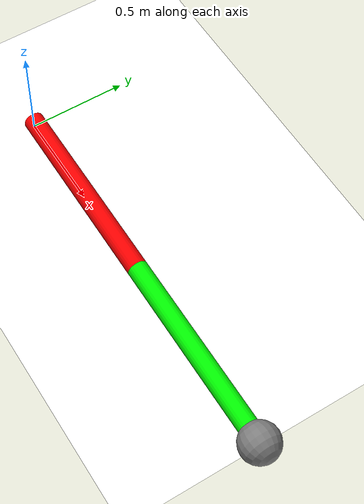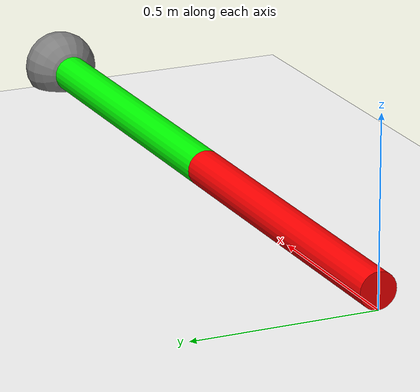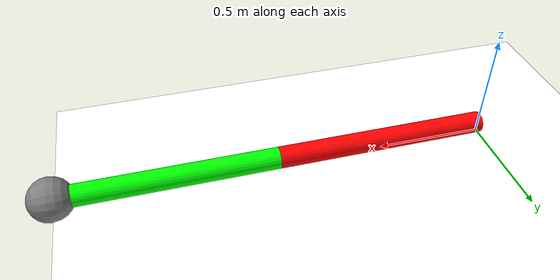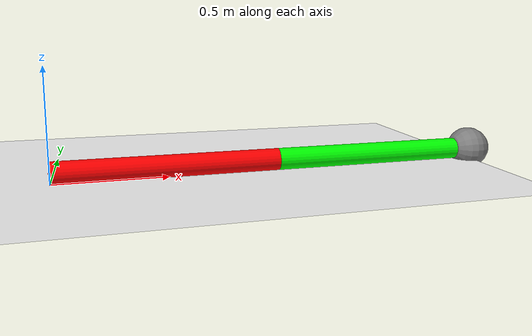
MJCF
<mujoco>
	<option gravity = "0 0 0"/>
	<worldbody>
        <light diffuse=".5 .5 .5" pos="0 0 10" dir="0 0 -1"/>
		<geom type="plane" size="2 2 0.1" rgba="1 1 1 1"/>
		<body pos="0.5 0 0.05" euler = "0 90 0">
		   <joint type="hinge" axis = "-1 0 0" pos = "0 0 -0.5"/>
		   <geom type="cylinder" size="0.05 .5" rgba="1 0 0 1"/>
		   <body pos="0 0 1" euler = "0 0 0">
		      <joint type="hinge" axis = "-1 0 0" pos="0 0 -0.5"/>
		      <geom type="cylinder" size="0.05 .5" rgba="0 1 0 1"/>
		      <site name= "tip" size = "0.1" pos="0 0 0.5"/>
		    </body>
	        </body>
	</worldbody>
	<sensor>
	   <framepos objtype = "site" objname="tip"/>
	</sensor>
</mujoco>
